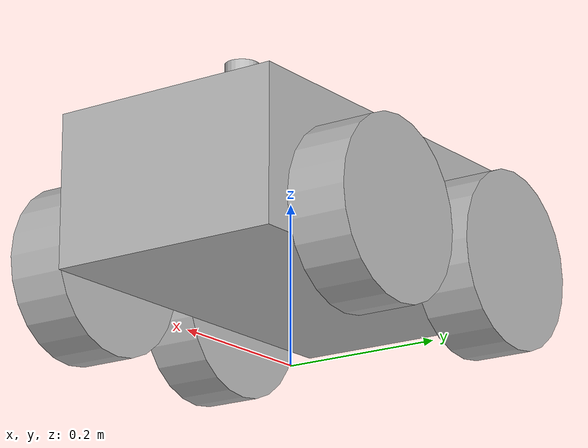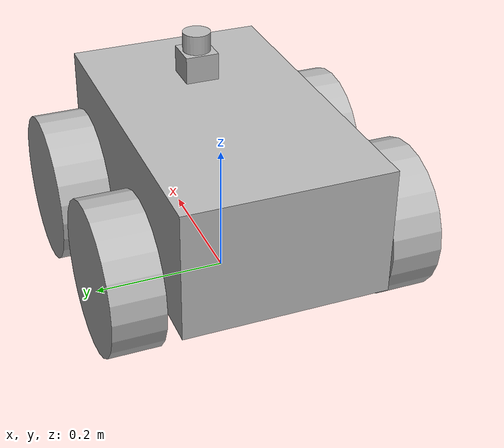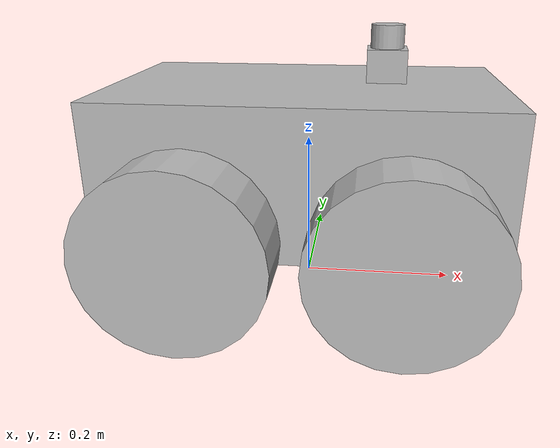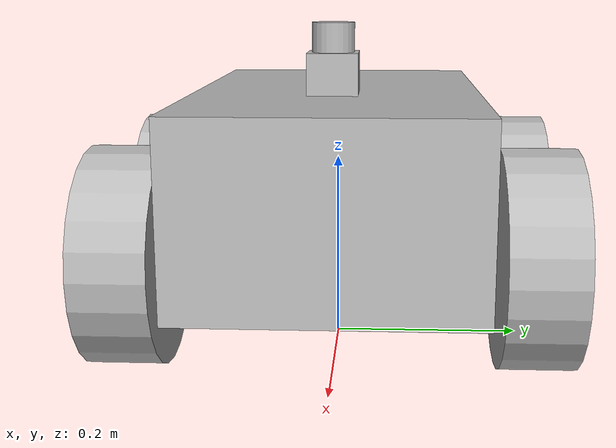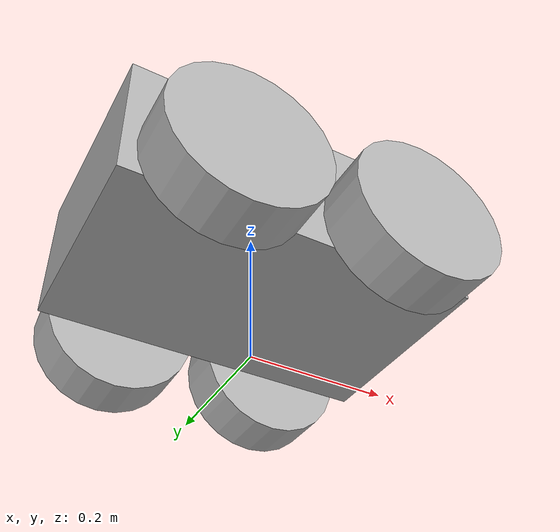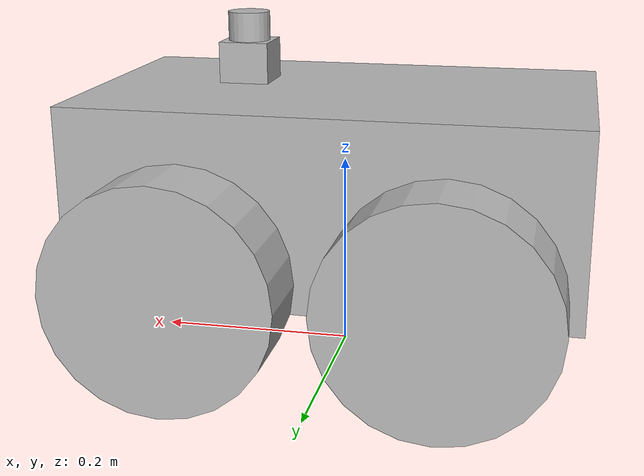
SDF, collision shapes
<?xml version="1.0" ?>
<sdf version="1.5">
  <model name="pioneer3at_with_sensors">
    <pose>0 0 0.180 0 0 0</pose>
    <static>false</static>
    <link name="base_link">
      <inertial>
        <mass>14.0</mass>
        <inertia>
          <ixx>0.147116667</ixx>
          <ixy>0.0</ixy>
          <ixz>0.0</ixz>
          <iyy>0.334951167</iyy>
          <iyz>0.0</iyz>
          <izz>0.3978345</izz>
        </inertia>
      </inertial>
      <collision name="collision1">
        <geometry>
          <box>
            <size>0.501 0.300 0.19</size>
          </box>
        </geometry>
      </collision>
      <visual name="visual1">
        <geometry>
          <mesh>
            <uri>model://pioneer3at_with_sensors/meshes/chassis.dae</uri>
          </mesh>
        </geometry>
      </visual>

       <sensor name='sensorCollision' type='contact'>
       	<plugin name="collision_plugin" filename="libcollision_plugin.so"/>
          <contact>
            <collision>collision1</collision>
          </contact>
        </sensor>

<!-- IMU Sensor -->
      <sensor name="imu_sensor" type="imu">
        <pose>0 0 0 0 0 0</pose>
        <always_on>1</always_on>
        <update_rate>100</update_rate>
<!--  NOW update rate is set 10 tempolarity -->
        <update_rate>10</update_rate>

        <imu>
<!--  NOW comment noise parameters out tempolary -->
          <noise>
            <type>gaussian</type>
            <rate>
              <mean>0</mean>
              <stddev>0.0002</stddev>
              <bias_mean>7.5e-06</bias_mean>
              <bias_stddev>8e-07</bias_stddev>
            </rate>
            <accel>
              <mean>0</mean>
              <stddev>0.017</stddev>
              <bias_mean>0.1</bias_mean>
              <bias_stddev>0.001</bias_stddev>
            </accel>
          </noise>

        </imu>
      </sensor>
<!-- GPS sensor copied from gazebo-5.0.1/test/worlds/gps_test.world -->
      <sensor name="gps" type="gps">
        <pose>0 0 0 0 0 0</pose>
        <update_rate>10.0</update_rate>
        <always_on>true</always_on>
        <gps>
          <position_sensing>
            <horizontal>
              <noise type="gaussian_quantized">
                <mean>0</mean>
                <stddev>1</stddev>
                <bias_mean>3</bias_mean>
                <bias_stddev>1</bias_stddev>
                <precision>0.5</precision>
              </noise>
            </horizontal>
            <vertical>
              <noise type="gaussian_quantized">
                <mean>0</mean>
                <stddev>1</stddev>
                <bias_mean>3</bias_mean>
                <bias_stddev>1</bias_stddev>
                <precision>1.0</precision>
              </noise>
            </vertical>
          </position_sensing>
          <velocity_sensing>
            <horizontal>
              <noise type="gaussian_quantized">
                <mean>0</mean>
                <stddev>0.1</stddev>
                <bias_mean>0.1</bias_mean>
                <bias_stddev>0.1</bias_stddev>
                <precision>0.1</precision>
              </noise>
            </horizontal>
            <vertical>
              <noise type="gaussian_quantized">
                <mean>0</mean>
                <stddev>0.2</stddev>
                <bias_mean>0.2</bias_mean>
                <bias_stddev>0.2</bias_stddev>
                <precision>0.2</precision>
              </noise>
            </vertical>
          </velocity_sensing>
        </gps>
      </sensor>
    </link>

<!-- Hokuyo (hight is 70mm) -->
    <include>
      <name>hokuyoV2</name>
      <pose>0.1 0 0.135 0 0 0</pose>
      <uri>model://hokuyoV2</uri>
    </include>
    <joint name="hokuyo_joint" type="revolute">
      <parent>base_link</parent>
      <child>hokuyoV2::link</child>
      <pose>0 0 0 0 0 0</pose>
      <axis>
        <xyz>0.000000 0.000000 1.000000</xyz>
        <limit>
          <lower>0</lower>
          <upper>0</upper>
        </limit>
      </axis>
    </joint>

<!-- logical camera -->

    <link name="logical_camera_link">
      <pose>0.2 0 0.2 0 0 0</pose>
      <sensor name="logical_camera" type="logical_camera">
          <logical_camera>
            <near>0.2</near>
            <far>1.0</far>
            <horizontal_fov>0.5</horizontal_fov>
            <aspect_ratio>1.2</aspect_ratio>
          </logical_camera>

          <visualize>true</visualize>
          <always_on>true</always_on>
          <update_rate>10</update_rate>
      </sensor>
    </link>

    <joint name="logical_camera_joint" type="fixed">
      <child>logical_camera_link</child>
      <parent>base_link</parent>
    </joint>

    <link name="right_front_wheel">
      <pose>0.125 -0.201 -0.06 1.5707 0 0</pose>

      <inertial>
        <mass>1.5</mass>
        <inertia>
          <ixx>0.005240625</ixx>
          <iyy>0.005240625</iyy>
          <izz>0.009075</izz>
          <ixy>0</ixy>
          <ixz>0</ixz>
          <iyz>0</iyz>
        </inertia>
      </inertial>

      <collision name="collision">
        <geometry>
          <cylinder>
            <radius>0.110</radius>
            <length>0.075</length>
          </cylinder>
        </geometry>
        <surface>
          <friction>
            <ode>
              <mu>1</mu>
              <mu2>1</mu2>
              <slip1>0.5</slip1>
              <slip2>0</slip2>
            </ode>
          </friction>
        </surface>
      </collision>
      <visual name="visual">
        <geometry>
          <mesh>
            <uri>model://pioneer3at_with_sensors/meshes/wheel.dae</uri>
          </mesh>
        </geometry>
      </visual>

		<sensor name='sensorCollision_rf_wheel' type='contact'>
       	<plugin name="collision_plugin" filename="libcollision_plugin.so"/>
          <contact>
            <collision>collision</collision>
          </contact>
        </sensor>

    </link>
    <link name="left_front_wheel">
      <pose>0.125 0.201 -0.06 1.5707 0 0</pose>

      <inertial>
        <mass>1.5</mass>
        <inertia>
          <ixx>0.005240625</ixx>
          <iyy>0.005240625</iyy>
          <izz>0.009075</izz>
          <ixy>0</ixy>
          <ixz>0</ixz>
          <iyz>0</iyz>
        </inertia>
      </inertial>

      <collision name="collision">
        <geometry>
          <cylinder>
            <radius>0.110</radius>
            <length>0.075</length>
          </cylinder>
        </geometry>
        <surface>
          <friction>
            <ode>
              <mu>1</mu>
              <mu2>1</mu2>
              <slip1>0.5</slip1>
              <slip2>0</slip2>
            </ode>
          </friction>
        </surface>
      </collision>
      <visual name="visual">
        <geometry>
          <mesh>
            <uri>model://pioneer3at_with_sensors/meshes/wheel.dae</uri>
          </mesh>
        </geometry>
      </visual>
      <sensor name='sensorCollision_lf_wheel' type='contact'>
       	<plugin name="collision_plugin" filename="libcollision_plugin.so"/>
          <contact>
            <collision>collision</collision>
          </contact>
        </sensor>
    </link>
    <link name="right_rear_wheel">
      <pose>-0.125 -0.201 -0.06 1.5707 0 0</pose>

      <inertial>
        <mass>1.5</mass>
        <inertia>
          <ixx>0.005240625</ixx>
          <iyy>0.005240625</iyy>
          <izz>0.009075</izz>
          <ixy>0</ixy>
          <ixz>0</ixz>
          <iyz>0</iyz>
        </inertia>
      </inertial>

      <collision name="collision">
        <geometry>
          <cylinder>
            <radius>0.110</radius>
            <length>0.075</length>
          </cylinder>
        </geometry>
        <surface>
          <friction>
            <ode>
              <mu>1</mu>
              <mu2>1</mu2>
              <slip1>0.5</slip1>
              <slip2>0</slip2>
            </ode>
          </friction>
        </surface>
      </collision>
      <visual name="visual">
        <geometry>
          <mesh>
            <uri>model://pioneer3at_with_sensors/meshes/wheel.dae</uri>
          </mesh>
        </geometry>
      </visual>
      <sensor name='sensorCollision_rr_wheel' type='contact'>
       	<plugin name="collision_plugin" filename="libcollision_plugin.so"/>
          <contact>
            <collision>collision</collision>
          </contact>
        </sensor>
    </link>
    <link name="left_rear_wheel">
      <pose>-0.125 0.201 -0.06 1.5707 0 0</pose>

      <inertial>
        <mass>1.5</mass>
        <inertia>
          <ixx>0.005240625</ixx>
          <iyy>0.005240625</iyy>
          <izz>0.009075</izz>
          <ixy>0</ixy>
          <ixz>0</ixz>
          <iyz>0</iyz>
        </inertia>
      </inertial>

      <collision name="collision">
        <geometry>
          <cylinder>
            <radius>0.110</radius>
            <length>0.075</length>
          </cylinder>
        </geometry>
        <surface>
          <friction>
            <ode>
              <mu>1</mu>
              <mu2>1</mu2>
              <slip1>0.5</slip1>
              <slip2>0</slip2>
            </ode>
          </friction>
        </surface>
      </collision>
      <visual name="visual">
        <geometry>
          <mesh>
            <uri>model://pioneer3at_with_sensors/meshes/wheel.dae</uri>
          </mesh>
        </geometry>
      </visual>
      <sensor name='sensorCollision_lr_wheel' type='contact'>
       	<plugin name="collision_plugin" filename="libcollision_plugin.so"/>
          <contact>
            <collision>collision</collision>
          </contact>
        </sensor>
    </link>
    <joint type="revolute" name="right_front">
      <pose>0 0 0 0 0 0</pose>
      <child>right_front_wheel</child>
      <parent>base_link</parent>
      <axis>
        <xyz>0 1 0</xyz>
        <use_parent_model_frame>true</use_parent_model_frame>
      </axis>
    </joint>
    <joint type="revolute" name="right_rear">
      <pose>0 0 0 0 0 0</pose>
      <child>right_rear_wheel</child>
      <parent>base_link</parent>
      <axis>
        <xyz>0 1 0</xyz>
        <use_parent_model_frame>true</use_parent_model_frame>
      </axis>
    </joint>
    <joint type="revolute" name="left_front">
      <pose>0 0 0 0 0 0</pose>
      <child>left_front_wheel</child>
      <parent>base_link</parent>
      <axis>
        <xyz>0 1 0</xyz>
        <use_parent_model_frame>true</use_parent_model_frame>
      </axis>
    </joint>
    <joint type="revolute" name="left_rear">
      <pose>0 0 0 0 0 0</pose>
      <child>left_rear_wheel</child>
      <parent>base_link</parent>
      <axis>
        <xyz>0 1 0</xyz>
        <use_parent_model_frame>true</use_parent_model_frame>
      </axis>
    </joint>

        <plugin filename="libgazebo_ros_skid_steer_drive.so" name="skid_steer_drive_controller">

      <updateRate>20.0</updateRate>
      <leftFrontJoint>left_front</leftFrontJoint>
      <rightFrontJoint>right_front</rightFrontJoint>
      <leftRearJoint>left_rear</leftRearJoint>
      <rightRearJoint>right_rear</rightRearJoint>
      <wheelSeparation>0.4</wheelSeparation>
      <wheelDiameter>0.215</wheelDiameter>
      <robotBaseFrame>base_link</robotBaseFrame>
      <MaxForce>5.0</MaxForce>
      <torque>200</torque>
      <commandTopic>cmd_vel</commandTopic>
      <odometryTopic>odom</odometryTopic>
      <odometryFrame>odom</odometryFrame>
      <broadcastTF>1</broadcastTF>
      <covariance_x>0.000100</covariance_x>
      <covariance_y>0.000100</covariance_y>
      <covariance_z>0.000100</covariance_z>
      <covariance_yaw>0.010000</covariance_yaw>

    </plugin>

   <plugin name="logical_camera" filename="liblogical_camera_plugin.so"/>

    <plugin name="imu_controller" filename="libhector_gazebo_ros_imu.so">

      <updateRate>50.0</updateRate>
      <bodyName>base_link</bodyName>
      <topicName>imu/data</topicName>
      <accelDrift>0.005 0.005 0.005</accelDrift>
      <accelGaussianNoise>0.005 0.005 0.005</accelGaussianNoise>
      <rateDrift>0.005 0.005 0.005 </rateDrift>
      <rateGaussianNoise>0.005 0.005 0.005 </rateGaussianNoise>
      <headingDrift>0.005</headingDrift>
      <headingGaussianNoise>0.005</headingGaussianNoise>
    </plugin>

  </model>
</sdf>

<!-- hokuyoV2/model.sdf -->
<sdf version="1.5">
  <model name="hokuyoV2">
    <pose>0 0 0.035 0 0 0</pose>
    <link name="link">
      <inertial>
        <mass>0.1</mass>
      </inertial>
      <visual name="visual">
        <geometry>
          <mesh>
            <uri>model://hokuyoV2/meshes/hokuyo.dae</uri>
          </mesh>
        </geometry>
      </visual>
      <collision name="collision-base">
        <pose>0 0 -0.0145 0 0 0</pose>
        <geometry>
          <box>
            <size>0.05 0.05 0.041</size>
          </box>
        </geometry>
      </collision>
      <collision name="collision-top">
        <pose>0 0 0.0205 0 0 0</pose>
        <geometry>
          <cylinder>
            <radius>0.021</radius>
            <length>0.029</length>
          </cylinder>
        </geometry>
      </collision>

      <sensor name="laser" type="ray">
        <pose>0 0 0 0 0 0</pose>
        <ray>
          <scan>
            <horizontal>
              <samples>640</samples>
              <resolution>1</resolution>
              <min_angle>-2.26889</min_angle>
              <max_angle>2.268899</max_angle>
            </horizontal>
          </scan>
          <range>
            <min>0.08</min>
            <max>10</max>
            <resolution>0.01</resolution>
          </range>
        </ray>

	 <plugin name="gazebo_ros_head_hokuyo_controller" filename="libgazebo_ros_laser.so">
      <topicName>/scan</topicName>
      <frameName>base_laser</frameName>
    </plugin>
	<always_on>1</always_on>
	<update_rate>30</update_rate>
	<visualize>true</visualize>

      </sensor>
    </link>
  </model>
</sdf>
